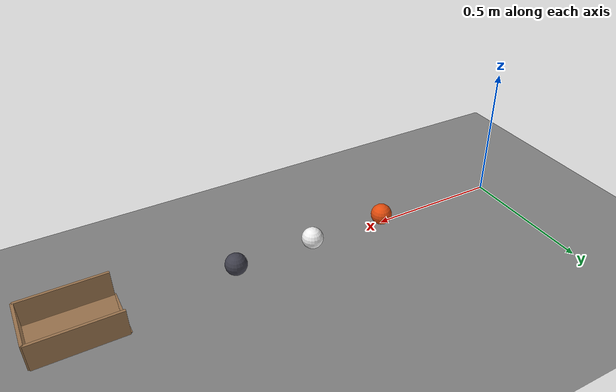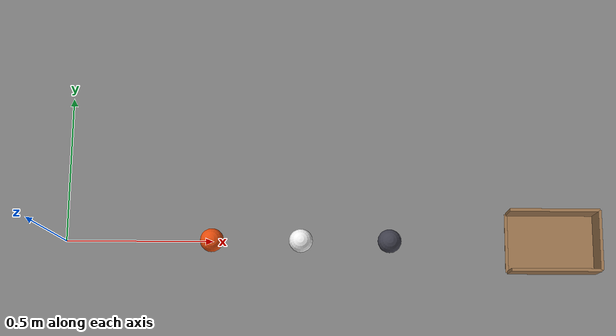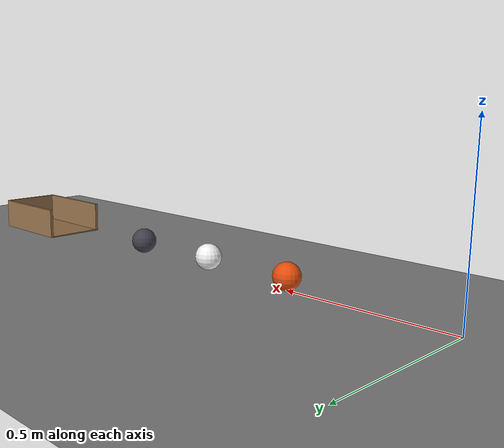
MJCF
<mujoco model="three_balls_into_a_cup">
  <compiler angle="radian"/>
  <option timestep="0.002"/>
  <worldbody>
    <geom name="floor" type="plane" size="6 6 0.1" friction="0.8 0.005 0.001"/>
    <body name="ball1" pos="0.5 0 0.04">
      <freejoint/>
      <geom name="ball1" type="sphere" pos="0 0 0" size="0.04" mass="0.1" condim="6" friction="0.8 0.005 0.001" solref="0.01 0.2" rgba="0.9 0.3 0.05 1"/>
    </body>
    <body name="ball2" pos="0.8 0 0.04">
      <freejoint/>
      <geom name="ball2" type="sphere" pos="0 0 0" size="0.04" mass="0.1" condim="6" friction="0.8 0.005 0.001" solref="0.01 0.2" rgba="0.95 0.95 0.95 1"/>
    </body>
    <body name="ball3" pos="1.1 0 0.04">
      <freejoint/>
      <geom name="ball3" type="sphere" pos="0 0 0" size="0.04" mass="0.1" condim="6" friction="0.8 0.005 0.001" solref="0.01 0.2" rgba="0.25 0.25 0.3 1"/>
    </body>
    <body name="cup">
      <geom name="cup_base" type="box" pos="1.65 0 0.0015" size="0.15 0.1 0.0015" friction="1 0.01 0.02" solref="0.01 1" rgba="0.6 0.45 0.3 1"/>
      <geom name="cup_near_wall" type="box" pos="1.5 0 0.0015" size="0.005 0.1 0.0015" friction="1 0.01 0.02" solref="0.01 1" rgba="0.6 0.45 0.3 1"/>
      <geom name="cup_far_wall" type="box" pos="1.8 0 0.05" size="0.005 0.1 0.05" friction="1 0.01 0.02" solref="0.01 1" rgba="0.6 0.45 0.3 1"/>
      <geom name="cup_left_wall" type="box" pos="1.65 0.1 0.05" size="0.15 0.005 0.05" friction="1 0.01 0.02" solref="0.01 1" rgba="0.6 0.45 0.3 1"/>
      <geom name="cup_right_wall" type="box" pos="1.65 -0.1 0.05" size="0.15 0.005 0.05" friction="1 0.01 0.02" solref="0.01 1" rgba="0.6 0.45 0.3 1"/>
    </body>
  </worldbody>
  <keyframe>
    <key name="start" qpos="0.5 0 0.04 1 0 0 0 0.8 0 0.04 1 0 0 0 1.1 0 0.04 1 0 0 0" qvel="3.5 0 0 0 87.5 0 0 0 0 0 0 0 0 0 0 0 0 0"/>
  </keyframe>
</mujoco>
